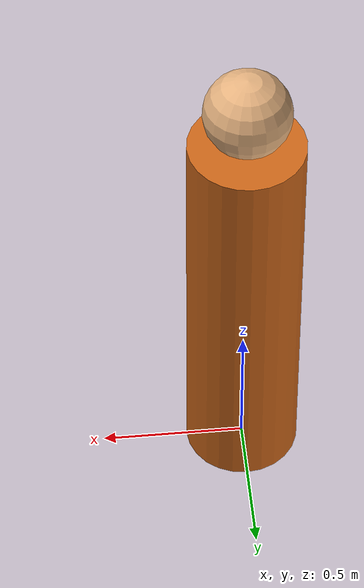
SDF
<?xml version="1.0" ?>
<sdf version="1.6">
    <model name="rescue_randy_standing">
        <static>true</static>
        <link name="link">
            <pose>0 0 0 0 0 0</pose>
            <!-- Body Cylinder -->
            <collision name="body_collision">
                <pose>0 0 0.75 0 0 0</pose>
                <geometry>
                    <cylinder>
                        <radius>0.2</radius>
                        <length>1.5</length>
                    </cylinder>
                </geometry>
            </collision>
            <visual name="body_visual">
                <pose>0 0 0.75 0 0 0</pose>
                <geometry>
                    <cylinder>
                        <radius>0.2</radius>
                        <length>1.5</length>
                    </cylinder>
                </geometry>
                <material>
                    <ambient>0.8 0.4 0.1 1</ambient>
                    <diffuse>0.8 0.4 0.1 1</diffuse>
                </material>
                <plugin filename="ignition-gazebo-thermal-system" name="ignition::gazebo::systems::Thermal">
                    <heat_signature>materials/textures/RescueRandy_Thermal.png</heat_signature>
                    <max_temp>305</max_temp>
                </plugin>
            </visual>
            <!-- Head Sphere -->
            <collision name="head_collision">
                <pose>0 0 1.65 0 0 0</pose>
                <geometry>
                    <sphere>
                        <radius>0.15</radius>
                    </sphere>
                </geometry>
            </collision>
            <visual name="head_visual">
                <pose>0 0 1.65 0 0 0</pose>
                <geometry>
                    <sphere>
                        <radius>0.15</radius>
                    </sphere>
                </geometry>
                <material>
                    <ambient>0.9 0.7 0.5 1</ambient>
                    <diffuse>0.9 0.7 0.5 1</diffuse>
                </material>
                <plugin filename="ignition-gazebo-thermal-system" name="ignition::gazebo::systems::Thermal">
                    <heat_signature>materials/textures/RescueRandy_Thermal.png</heat_signature>
                    <max_temp>307</max_temp>
                </plugin>
            </visual>
        </link>
    </model>
</sdf>
